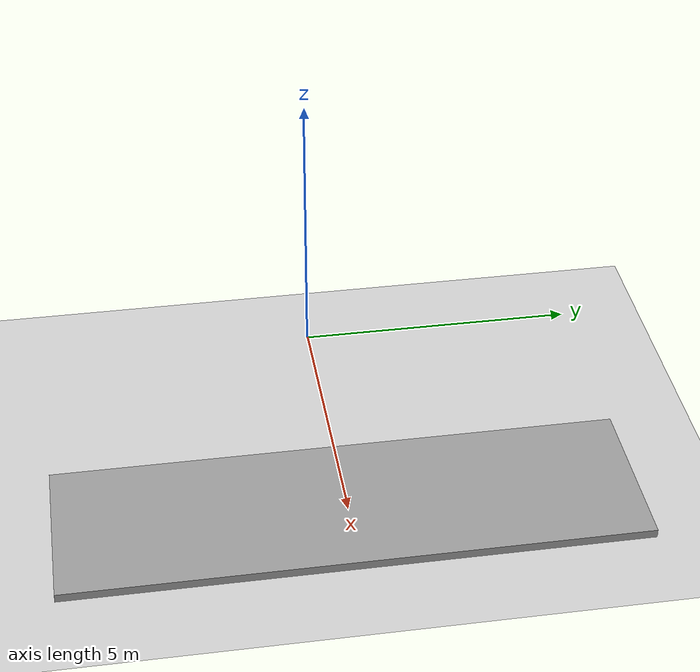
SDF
<sdf version="1.7">
 <world name="default">
  <plugin name="xbot2_clock" filename="libxbot2_gz_clock.so"/>
  <gravity>0 0 -9.81</gravity>
  <model name="ground_plane">
   <static>1</static>
   <link name="link">
    <collision name="collision">
     <geometry><plane><normal>0 0 1</normal><size>100 100</size></plane></geometry>
     <surface><friction><ode><mu>1</mu><mu2>1</mu2></ode></friction></surface>
     <max_contacts>5</max_contacts>
    </collision>
    <visual name="visual">
     <cast_shadows>0</cast_shadows>
     <geometry><plane><normal>0 0 1</normal><size>100 100</size></plane></geometry>
     <material>
      <script><uri>file://media/materials/scripts/gazebo.material</uri><name>Gazebo/Grey</name></script>
     </material>
    </visual>
   </link>
  </model>
  <light name="sun" type="directional">
   <pose>0 0 10 0 -0 0</pose>
   <diffuse>0.8 0.8 0.8 1</diffuse>
   <specular>0.2 0.2 0.2 1</specular>
   <attenuation>
    <range>1000</range>
    <constant>0.9</constant>
    <linear>0.01</linear>
    <quadratic>0.001</quadratic>
   </attenuation>
   <direction>-0.5 0.1 -0.9</direction>
   <spot><inner_angle>0</inner_angle><outer_angle>0</outer_angle><falloff>0</falloff></spot>
  </light>
  <physics name="update_rate" type="ode">
   <real_time_update_rate>4000</real_time_update_rate>
   <max_step_size>0.00025</max_step_size>
   <max_contacts>5</max_contacts>
   <bullet>
    <solver><iters>100</iters><sor>1.55</sor><type>sequential_impulse</type></solver>
    <constraints>
     <contact_surface_layer>0.2</contact_surface_layer>
     <cfm>0.005</cfm>
     <erp>0.2</erp>
     <split_impulse>1</split_impulse>
     <split_impulse_penetration_threshold>-0.01</split_impulse_penetration_threshold>
    </constraints>
   </bullet>
   <ode>
    <solver>
     <iters>50</iters>
     <sor>1.2</sor>
     <type>quick</type>
     <use_dynamic_moi_rescaling>0</use_dynamic_moi_rescaling>
    </solver>
    <constraints>
     <contact_surface_layer>0.0002</contact_surface_layer>
     <contact_max_correcting_vel>500</contact_max_correcting_vel>
     <cfm>1e-06</cfm>
     <erp>0.3</erp>
    </constraints>
   </ode>
   <real_time_factor>0.5</real_time_factor>
  </physics>
  <magnetic_field>6e-06 2.3e-05 -4.2e-05</magnetic_field>
  <atmosphere type="adiabatic"/>
  <scene><ambient>0.4 0.4 0.4 1</ambient><background>0.7 0.7 0.7 1</background><shadows>1</shadows></scene>
  <spherical_coordinates>
   <surface_model>EARTH_WGS84</surface_model>
   <latitude_deg>0</latitude_deg>
   <longitude_deg>0</longitude_deg>
   <elevation>0</elevation>
   <heading_deg>0</heading_deg>
  </spherical_coordinates>
  <model name="unit_box">
   <static>true</static>
   <pose>5 0 0.075 0 0 0</pose>
   <link name="link">
    <collision name="collision">
     <geometry><box><size>3 10 0.15</size></box></geometry>
     <surface><friction><ode><mu>1</mu><mu2>1</mu2></ode></friction></surface>
    </collision>
    <visual name="visual">
     <geometry><box><size>3 10 0.15</size></box></geometry>
     <material>
      <script><name>Gazebo/Grey</name><uri>file://media/materials/scripts/gazebo.material</uri></script>
     </material>
    </visual>
   </link>
  </model>
 </world>
</sdf>
